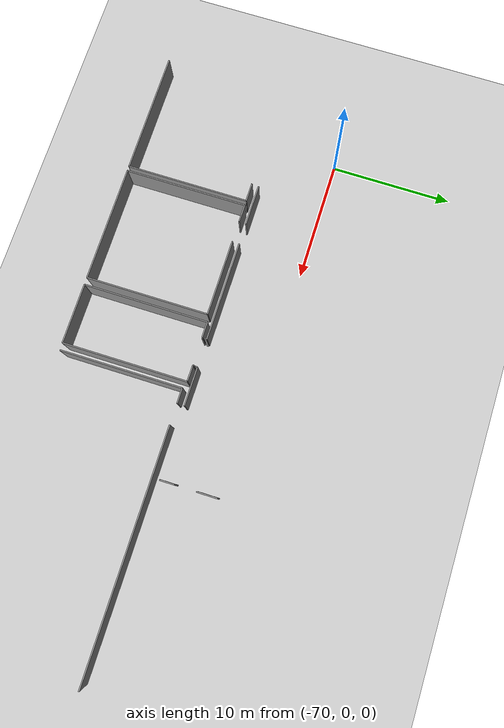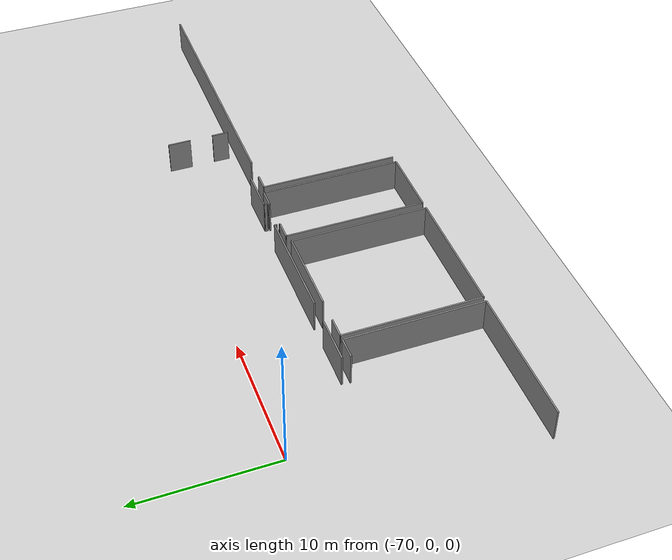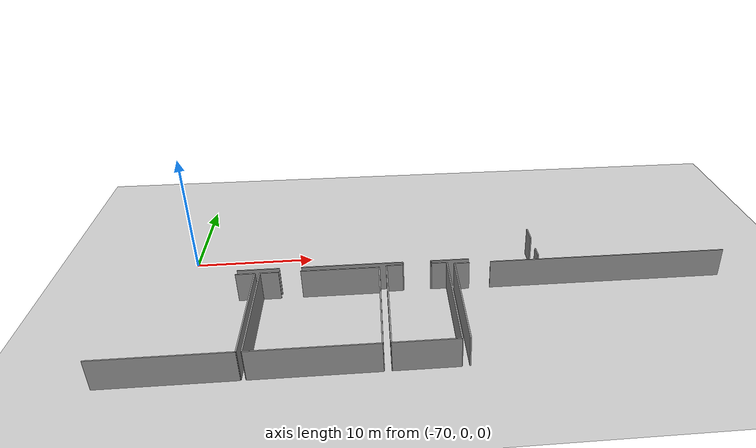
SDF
<sdf version="1.6">
 <world name="default">
  <model name="ground_plane">
   <static>1</static>
   <link name="link">
    <collision name="collision">
     <geometry><plane><normal>0 0 1</normal><size>100 100</size></plane></geometry>
     <surface><friction><ode><mu>100</mu><mu2>50</mu2></ode></friction></surface>
    </collision>
    <visual name="visual">
     <cast_shadows>0</cast_shadows>
     <geometry><plane><normal>0 0 1</normal><size>100 100</size></plane></geometry>
     <material>
      <script><uri>file://media/materials/scripts/gazebo.material</uri><name>Gazebo/Grey</name></script>
     </material>
    </visual>
   </link>
  </model>
  <model name="50055637">
   <static>1</static>
   <link name="Wall_2">
    <collision name="Wall_2_Collision">
     <geometry><box><size>1.54836988624 0.1 2.5</size></box></geometry>
     <pose>0.774184943122 0 1.25 0 0 0</pose>
    </collision>
    <visual name="Wall_2_Visual">
     <pose>0.774184943122 0 1.25 0 0 0</pose>
     <geometry><box><size>1.54836988624 0.1 2.5</size></box></geometry>
     <material>
      <script><uri>file://media/materials/scripts/gazebo.material</uri><name>Gazebo/Grey</name></script>
      <ambient>1 1 1 1</ambient>
     </material>
    </visual>
    <pose>8.56690992931 -21.219615988 0 0 0 0.0</pose>
   </link>
   <link name="Wall_3">
    <collision name="Wall_3_Collision">
     <geometry><box><size>10.0830141702 0.1 2.5</size></box></geometry>
     <pose>5.0415070851 0 1.25 0 0 0</pose>
    </collision>
    <visual name="Wall_3_Visual">
     <pose>5.0415070851 0 1.25 0 0 0</pose>
     <geometry><box><size>10.0830141702 0.1 2.5</size></box></geometry>
     <material>
      <script><uri>file://media/materials/scripts/gazebo.material</uri><name>Gazebo/Grey</name></script>
      <ambient>1 1 1 1</ambient>
     </material>
    </visual>
    <pose>10.1152798156 -21.219615988 0 0 0 -1.57079632679</pose>
   </link>
   <link name="Wall_4">
    <collision name="Wall_4_Collision">
     <geometry><box><size>10.0935593599 0.1 2.5</size></box></geometry>
     <pose>5.04677967996 0 1.25 0 0 0</pose>
    </collision>
    <visual name="Wall_4_Visual">
     <pose>5.04677967996 0 1.25 0 0 0</pose>
     <geometry><box><size>10.0935593599 0.1 2.5</size></box></geometry>
     <material>
      <script><uri>file://media/materials/scripts/gazebo.material</uri><name>Gazebo/Grey</name></script>
      <ambient>1 1 1 1</ambient>
     </material>
    </visual>
    <pose>10.1152798156 -31.3026301582 0 0 0 3.14101373146</pose>
   </link>
   <link name="Wall_26">
    <collision name="Wall_26_Collision">
     <geometry><box><size>10.0817438692 0.1 2.5</size></box></geometry>
     <pose>5.0408719346 0 1.25 0 0 0</pose>
    </collision>
    <visual name="Wall_26_Visual">
     <pose>5.0408719346 0 1.25 0 0 0</pose>
     <geometry><box><size>10.0817438692 0.1 2.5</size></box></geometry>
     <material>
      <script><uri>file://media/materials/scripts/gazebo.material</uri><name>Gazebo/Grey</name></script>
      <ambient>1 1 1 1</ambient>
     </material>
    </visual>
    <pose>10.5067865831 -31.2975489542 0 0 0 1.57079632679</pose>
   </link>
   <link name="Wall_27">
    <collision name="Wall_27_Collision">
     <geometry><box><size>1.48917385975 0.1 2.5</size></box></geometry>
     <pose>0.744586929873 0 1.25 0 0 0</pose>
    </collision>
    <visual name="Wall_27_Visual">
     <pose>0.744586929873 0 1.25 0 0 0</pose>
     <geometry><box><size>1.48917385975 0.1 2.5</size></box></geometry>
     <material>
      <script><uri>file://media/materials/scripts/gazebo.material</uri><name>Gazebo/Grey</name></script>
      <ambient>1 1 1 1</ambient>
     </material>
    </visual>
    <pose>10.5067865831 -21.215805085 0 0 0 0.0</pose>
   </link>
   <link name="Wall_28">
    <collision name="Wall_28_Collision">
     <geometry><box><size>6.33295859454 0.1 2.5</size></box></geometry>
     <pose>3.16647929727 0 1.25 0 0 0</pose>
    </collision>
    <visual name="Wall_28_Visual">
     <pose>3.16647929727 0 1.25 0 0 0</pose>
     <geometry><box><size>6.33295859454 0.1 2.5</size></box></geometry>
     <material>
      <script><uri>file://media/materials/scripts/gazebo.material</uri><name>Gazebo/Grey</name></script>
      <ambient>1 1 1 1</ambient>
     </material>
    </visual>
    <pose>13.745418977 -21.215805085 0 0 0 0.0</pose>
   </link>
   <link name="Wall_29">
    <collision name="Wall_29_Collision">
     <geometry><box><size>10.0950820297 0.1 2.5</size></box></geometry>
     <pose>5.04754101484 0 1.25 0 0 0</pose>
    </collision>
    <visual name="Wall_29_Visual">
     <pose>5.04754101484 0 1.25 0 0 0</pose>
     <geometry><box><size>10.0950820297 0.1 2.5</size></box></geometry>
     <material>
      <script><uri>file://media/materials/scripts/gazebo.material</uri><name>Gazebo/Grey</name></script>
      <ambient>1 1 1 1</ambient>
     </material>
    </visual>
    <pose>20.0783775716 -21.215805085 0 0 0 -1.57079632679</pose>
   </link>
   <link name="Wall_30">
    <collision name="Wall_30_Collision">
     <geometry><box><size>9.57160028195 0.1 2.5</size></box></geometry>
     <pose>4.78580014097 0 1.25 0 0 0</pose>
    </collision>
    <visual name="Wall_30_Visual">
     <pose>4.78580014097 0 1.25 0 0 0</pose>
     <geometry><box><size>9.57160028195 0.1 2.5</size></box></geometry>
     <material>
      <script><uri>file://media/materials/scripts/gazebo.material</uri><name>Gazebo/Grey</name></script>
      <ambient>1 1 1 1</ambient>
     </material>
    </visual>
    <pose>20.0783775716 -31.3108871147 0 0 0 3.14019913898</pose>
   </link>
   <link name="Wall_31">
    <collision name="Wall_31_Collision">
     <geometry><box><size>10.272416049 0.1 2.5</size></box></geometry>
     <pose>5.13620802449 0 1.25 0 0 0</pose>
    </collision>
    <visual name="Wall_31_Visual">
     <pose>5.13620802449 0 1.25 0 0 0</pose>
     <geometry><box><size>10.272416049 0.1 2.5</size></box></geometry>
     <material>
      <script><uri>file://media/materials/scripts/gazebo.material</uri><name>Gazebo/Grey</name></script>
      <ambient>1 1 1 1</ambient>
     </material>
    </visual>
    <pose>20.6778326124 -31.3017409475 0 0 0 1.57079632679</pose>
   </link>
   <link name="Wall_32">
    <collision name="Wall_32_Collision">
     <geometry><box><size>1.31158578025 0.1 2.5</size></box></geometry>
     <pose>0.655792890125 0 1.25 0 0 0</pose>
    </collision>
    <visual name="Wall_32_Visual">
     <pose>0.655792890125 0 1.25 0 0 0</pose>
     <geometry><box><size>1.31158578025 0.1 2.5</size></box></geometry>
     <material>
      <script><uri>file://media/materials/scripts/gazebo.material</uri><name>Gazebo/Grey</name></script>
      <ambient>1 1 1 1</ambient>
     </material>
    </visual>
    <pose>20.6778326124 -21.0293248985 0 0 0 0.0</pose>
   </link>
   <link name="Wall_33">
    <collision name="Wall_33_Collision">
     <geometry><box><size>0.0325197055442 0.1 2.5</size></box></geometry>
     <pose>0.0162598527721 0 1.25 0 0 0</pose>
    </collision>
    <visual name="Wall_33_Visual">
     <pose>0.0162598527721 0 1.25 0 0 0</pose>
     <geometry><box><size>0.0325197055442 0.1 2.5</size></box></geometry>
     <material>
      <script><uri>file://media/materials/scripts/gazebo.material</uri><name>Gazebo/Grey</name></script>
      <ambient>1 1 1 1</ambient>
     </material>
    </visual>
    <pose>21.9894183927 -21.0293248985 0 0 0 1.57079632679</pose>
   </link>
   <link name="Wall_34">
    <collision name="Wall_34_Collision">
     <geometry><box><size>0.0829506551577 0.1 2.5</size></box></geometry>
     <pose>0.0414753275789 0 1.25 0 0 0</pose>
    </collision>
    <visual name="Wall_34_Visual">
     <pose>0.0414753275789 0 1.25 0 0 0</pose>
     <geometry><box><size>0.0829506551577 0.1 2.5</size></box></geometry>
     <material>
      <script><uri>file://media/materials/scripts/gazebo.material</uri><name>Gazebo/Grey</name></script>
      <ambient>1 1 1 1</ambient>
     </material>
    </visual>
    <pose>21.9894183927 -20.996805193 0 0 0 0.0</pose>
   </link>
   <link name="Wall_35">
    <collision name="Wall_35_Collision">
     <geometry><box><size>0.111913517908 0.1 2.5</size></box></geometry>
     <pose>0.055956758954 0 1.25 0 0 0</pose>
    </collision>
    <visual name="Wall_35_Visual">
     <pose>0.055956758954 0 1.25 0 0 0</pose>
     <geometry><box><size>0.111913517908 0.1 2.5</size></box></geometry>
     <material>
      <script><uri>file://media/materials/scripts/gazebo.material</uri><name>Gazebo/Grey</name></script>
      <ambient>1 1 1 1</ambient>
     </material>
    </visual>
    <pose>24.2489027775 -20.996805193 0 0 0 0.0</pose>
   </link>
   <link name="Wall_36">
    <collision name="Wall_36_Collision">
     <geometry><box><size>0.0199437256658 0.1 2.5</size></box></geometry>
     <pose>0.0099718628329 0 1.25 0 0 0</pose>
    </collision>
    <visual name="Wall_36_Visual">
     <pose>0.0099718628329 0 1.25 0 0 0</pose>
     <geometry><box><size>0.0199437256658 0.1 2.5</size></box></geometry>
     <material>
      <script><uri>file://media/materials/scripts/gazebo.material</uri><name>Gazebo/Grey</name></script>
      <ambient>1 1 1 1</ambient>
     </material>
    </visual>
    <pose>24.3608162954 -20.996805193 0 0 0 -1.57079632679</pose>
   </link>
   <link name="Wall_37">
    <collision name="Wall_37_Collision">
     <geometry><box><size>1.283258068 0.1 2.5</size></box></geometry>
     <pose>0.641629034 0 1.25 0 0 0</pose>
    </collision>
    <visual name="Wall_37_Visual">
     <pose>0.641629034 0 1.25 0 0 0</pose>
     <geometry><box><size>1.283258068 0.1 2.5</size></box></geometry>
     <material>
      <script><uri>file://media/materials/scripts/gazebo.material</uri><name>Gazebo/Grey</name></script>
      <ambient>1 1 1 1</ambient>
     </material>
    </visual>
    <pose>24.3608162954 -21.0167489187 0 0 0 0.0</pose>
   </link>
   <link name="Wall_38">
    <collision name="Wall_38_Collision">
     <geometry><box><size>10.2898191727 0.1 2.5</size></box></geometry>
     <pose>5.14490958633 0 1.25 0 0 0</pose>
    </collision>
    <visual name="Wall_38_Visual">
     <pose>5.14490958633 0 1.25 0 0 0</pose>
     <geometry><box><size>10.2898191727 0.1 2.5</size></box></geometry>
     <material>
      <script><uri>file://media/materials/scripts/gazebo.material</uri><name>Gazebo/Grey</name></script>
      <ambient>1 1 1 1</ambient>
     </material>
    </visual>
    <pose>25.6440743634 -21.0167489187 0 0 0 -1.57079632679</pose>
   </link>
   <link name="Wall_39">
    <collision name="Wall_39_Collision">
     <geometry><box><size>4.96624409695 0.1 2.5</size></box></geometry>
     <pose>2.48312204848 0 1.25 0 0 0</pose>
    </collision>
    <visual name="Wall_39_Visual">
     <pose>2.48312204848 0 1.25 0 0 0</pose>
     <geometry><box><size>4.96624409695 0.1 2.5</size></box></geometry>
     <material>
      <script><uri>file://media/materials/scripts/gazebo.material</uri><name>Gazebo/Grey</name></script>
      <ambient>1 1 1 1</ambient>
     </material>
    </visual>
    <pose>25.6440743634 -31.3065680913 0 0 0 3.14062066259</pose>
   </link>
   <link name="Wall_40">
    <collision name="Wall_40_Collision">
     <geometry><box><size>10.0747572137 0.1 2.5</size></box></geometry>
     <pose>5.03737860686 0 1.25 0 0 0</pose>
    </collision>
    <visual name="Wall_40_Visual">
     <pose>5.03737860686 0 1.25 0 0 0</pose>
     <geometry><box><size>10.0747572137 0.1 2.5</size></box></geometry>
     <material>
      <script><uri>file://media/materials/scripts/gazebo.material</uri><name>Gazebo/Grey</name></script>
      <ambient>1 1 1 1</ambient>
     </material>
    </visual>
    <pose>26.2445456451 -31.2989462853 0 0 0 1.57079632679</pose>
   </link>
   <link name="Wall_41">
    <collision name="Wall_41_Collision">
     <geometry><box><size>1.23803535248 0.1 2.5</size></box></geometry>
     <pose>0.619017676238 0 1.25 0 0 0</pose>
    </collision>
    <visual name="Wall_41_Visual">
     <pose>0.619017676238 0 1.25 0 0 0</pose>
     <geometry><box><size>1.23803535248 0.1 2.5</size></box></geometry>
     <material>
      <script><uri>file://media/materials/scripts/gazebo.material</uri><name>Gazebo/Grey</name></script>
      <ambient>1 1 1 1</ambient>
     </material>
    </visual>
    <pose>26.2445456451 -21.2241890716 0 0 0 0.0</pose>
   </link>
   <link name="Wall_42">
    <collision name="Wall_42_Collision">
     <geometry><box><size>19.9673532644 0.1 2.5</size></box></geometry>
     <pose>9.98367663218 0 1.25 0 0 0</pose>
    </collision>
    <visual name="Wall_42_Visual">
     <pose>9.98367663218 0 1.25 0 0 0</pose>
     <geometry><box><size>19.9673532644 0.1 2.5</size></box></geometry>
     <material>
      <script><uri>file://media/materials/scripts/gazebo.material</uri><name>Gazebo/Grey</name></script>
      <ambient>1 1 1 1</ambient>
     </material>
    </visual>
    <pose>29.2199716723 -21.2241890716 0 0 0 0.0</pose>
   </link>
   <link name="Wall_51">
    <collision name="Wall_51_Collision">
     <geometry><box><size>1.68060822012 0.1 2.5</size></box></geometry>
     <pose>0.840304110059 0 1.25 0 0 0</pose>
    </collision>
    <visual name="Wall_51_Visual">
     <pose>0.840304110059 0 1.25 0 0 0</pose>
     <geometry><box><size>1.68060822012 0.1 2.5</size></box></geometry>
     <material>
      <script><uri>file://media/materials/scripts/gazebo.material</uri><name>Gazebo/Grey</name></script>
      <ambient>1 1 1 1</ambient>
     </material>
    </visual>
    <pose>33.3760154469 -16.0137954688 0 0 0 -1.57079632679</pose>
   </link>
   <link name="Wall_52">
    <collision name="Wall_52_Collision">
     <geometry><box><size>1.20056147304 0.1 2.5</size></box></geometry>
     <pose>0.600280736521 0 1.25 0 0 0</pose>
    </collision>
    <visual name="Wall_52_Visual">
     <pose>0.600280736521 0 1.25 0 0 0</pose>
     <geometry><box><size>1.20056147304 0.1 2.5</size></box></geometry>
     <material>
      <script><uri>file://media/materials/scripts/gazebo.material</uri><name>Gazebo/Grey</name></script>
      <ambient>1 1 1 1</ambient>
     </material>
    </visual>
    <pose>33.3760154469 -19.4297618821 0 0 0 -1.57079632679</pose>
   </link>
   <link name="Wall_54">
    <collision name="Wall_54_Collision">
     <geometry><box><size>3.16546305647 0.1 2.5</size></box></geometry>
     <pose>1.58273152824 0 1.25 0 0 0</pose>
    </collision>
    <visual name="Wall_54_Visual">
     <pose>1.58273152824 0 1.25 0 0 0</pose>
     <geometry><box><size>3.16546305647 0.1 2.5</size></box></geometry>
     <material>
      <script><uri>file://media/materials/scripts/gazebo.material</uri><name>Gazebo/Grey</name></script>
      <ambient>1 1 1 1</ambient>
     </material>
    </visual>
    <pose>27.5081140476 -20.6303233551 0 0 0 3.14159265359</pose>
   </link>
   <link name="Wall_55">
    <collision name="Wall_55_Collision">
     <geometry><box><size>0.183558494185 0.1 2.5</size></box></geometry>
     <pose>0.0917792470926 0 1.25 0 0 0</pose>
    </collision>
    <visual name="Wall_55_Visual">
     <pose>0.0917792470926 0 1.25 0 0 0</pose>
     <geometry><box><size>0.183558494185 0.1 2.5</size></box></geometry>
     <material>
      <script><uri>file://media/materials/scripts/gazebo.material</uri><name>Gazebo/Grey</name></script>
      <ambient>1 1 1 1</ambient>
     </material>
    </visual>
    <pose>24.3426509912 -20.6303233551 0 0 0 -1.57079632679</pose>
   </link>
   <link name="Wall_56">
    <collision name="Wall_56_Collision">
     <geometry><box><size>0.0374738794357 0.1 2.5</size></box></geometry>
     <pose>0.0187369397179 0 1.25 0 0 0</pose>
    </collision>
    <visual name="Wall_56_Visual">
     <pose>0.0187369397179 0 1.25 0 0 0</pose>
     <geometry><box><size>0.0374738794357 0.1 2.5</size></box></geometry>
     <material>
      <script><uri>file://media/materials/scripts/gazebo.material</uri><name>Gazebo/Grey</name></script>
      <ambient>1 1 1 1</ambient>
     </material>
    </visual>
    <pose>24.3426509912 -20.8138818493 0 0 0 3.14159265359</pose>
   </link>
   <link name="Wall_57">
    <collision name="Wall_57_Collision">
     <geometry><box><size>0.177206989196 0.1 2.5</size></box></geometry>
     <pose>0.088603494598 0 1.25 0 0 0</pose>
    </collision>
    <visual name="Wall_57_Visual">
     <pose>0.088603494598 0 1.25 0 0 0</pose>
     <geometry><box><size>0.177206989196 0.1 2.5</size></box></geometry>
     <material>
      <script><uri>file://media/materials/scripts/gazebo.material</uri><name>Gazebo/Grey</name></script>
      <ambient>1 1 1 1</ambient>
     </material>
    </visual>
    <pose>22.0287977236 -20.8138818493 0 0 0 1.57079632679</pose>
   </link>
   <link name="Wall_58">
    <collision name="Wall_58_Collision">
     <geometry><box><size>8.25009686045 0.1 2.5</size></box></geometry>
     <pose>4.12504843023 0 1.25 0 0 0</pose>
    </collision>
    <visual name="Wall_58_Visual">
     <pose>4.12504843023 0 1.25 0 0 0</pose>
     <geometry><box><size>8.25009686045 0.1 2.5</size></box></geometry>
     <material>
      <script><uri>file://media/materials/scripts/gazebo.material</uri><name>Gazebo/Grey</name></script>
      <ambient>1 1 1 1</ambient>
     </material>
    </visual>
    <pose>22.0287977236 -20.6366748601 0 0 0 3.14159265359</pose>
   </link>
   <link name="Wall_59">
    <collision name="Wall_59_Collision">
     <geometry><box><size>3.39475238658 0.1 2.5</size></box></geometry>
     <pose>1.69737619329 0 1.25 0 0 0</pose>
    </collision>
    <visual name="Wall_59_Visual">
     <pose>1.69737619329 0 1.25 0 0 0</pose>
     <geometry><box><size>3.39475238658 0.1 2.5</size></box></geometry>
     <material>
      <script><uri>file://media/materials/scripts/gazebo.material</uri><name>Gazebo/Grey</name></script>
      <ambient>1 1 1 1</ambient>
     </material>
    </visual>
    <pose>12.0310207504 -20.6366748601 0 0 0 3.14159265359</pose>
   </link>
   <pose>-74.15 15.3113952351 0 0 0 0</pose>
  </model>
 </world>
</sdf>
